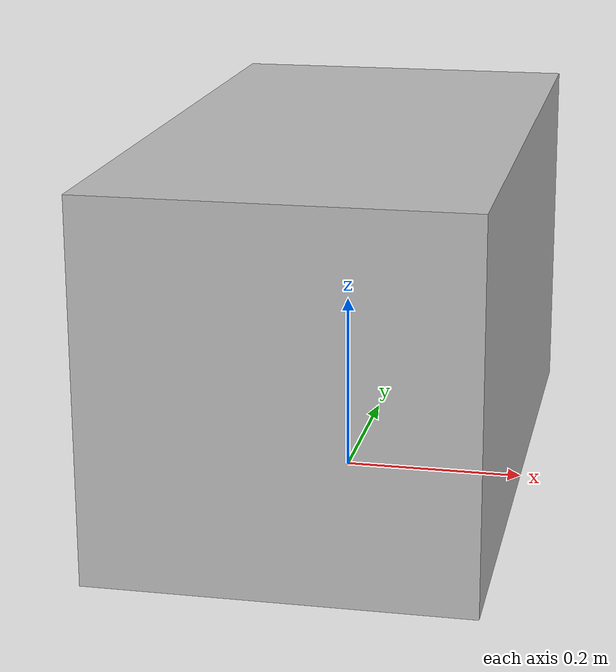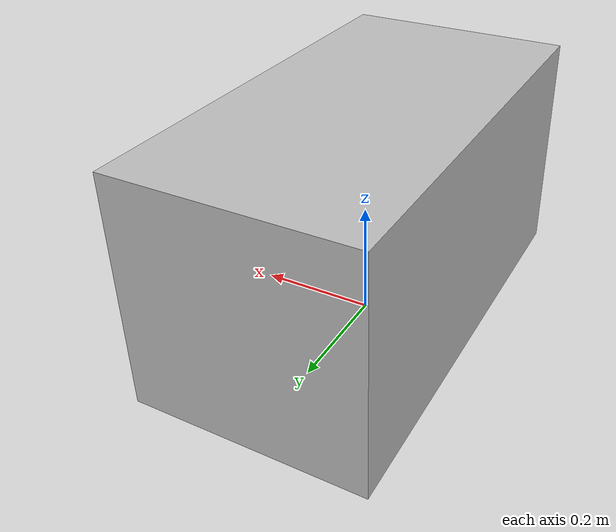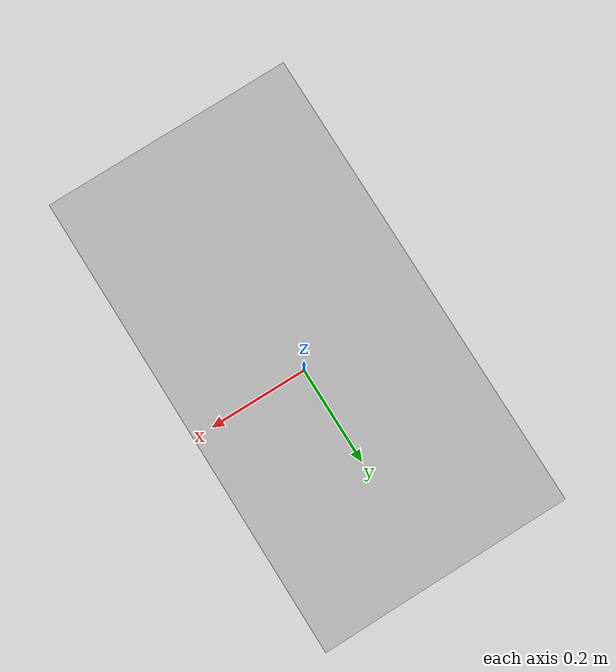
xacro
<robot name="id07_16h5" xmlns:xacro="http://ros.org/wiki/xacro">

	<xacro:property name="X_PI" value="3.1415926535897931" />
	<xacro:property name="X_id" value="creo_block" />
	<link name="${X_id}/base_footprint"/>
	<joint name="base_joint" type="fixed">
		<origin xyz="0 0 0" rpy="0 0 0" />
		<parent link="${X_id}/base_footprint"/>
		<child link="${X_id}/base_link" />
	</joint>

	<link name="${X_id}/base_link">
		<visual>
			<geometry>
				<mesh filename="package://robot_descriptions/common/dae/${X_id}.dae" />
			</geometry>
			<origin xyz="0 0 0" rpy="0 0 0"/>
			<material name="grey"/>
		</visual>
		<collision>
			<geometry>
				<box size="0.4 0.75 0.4"/>
			</geometry>
			<origin xyz="0 0 0.2" rpy="0 0 0"/>
		</collision>
		<inertial>
			<mass value="1"/> <!-- 2.4/2.6 kg for small/big battery pack -->
			<origin xyz="0 0 0"/>
			<inertia ixx="1" ixy="0.0" ixz="0.0" iyy="1" iyz="0.0" izz="1" />
		</inertial>
	</link>

	<gazebo reference="${X_id}/base_link">
		<material>Gazebo/White</material>
	</gazebo>
	<gazebo reference="${X_id}/fill_link">
		<material>Gazebo/Black</material>
	</gazebo>

	<material name="grey">
		<color rgba="0.75 0.75 0.75 1"/>
	</material>

</robot>
